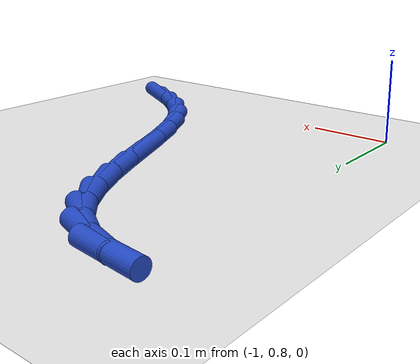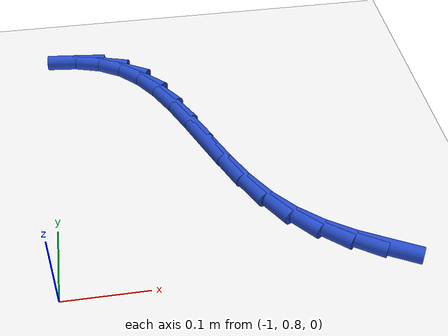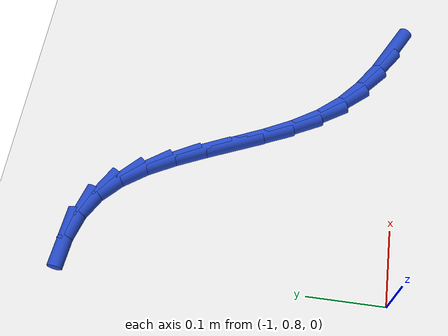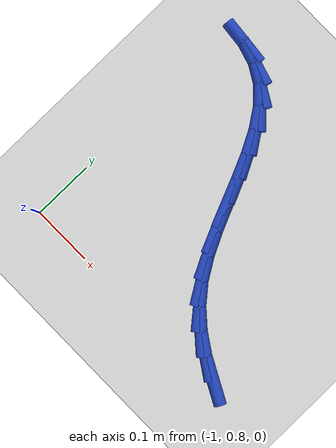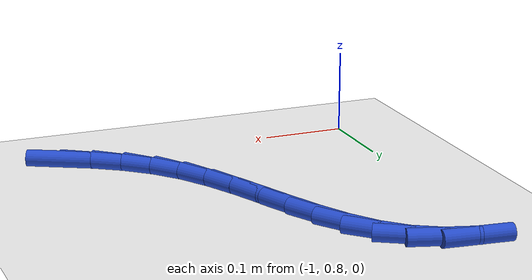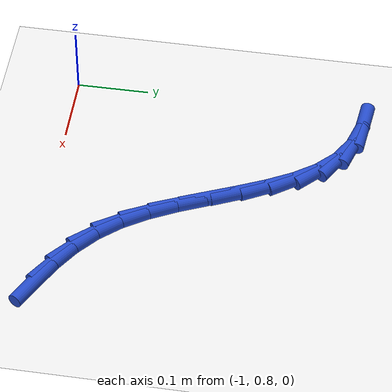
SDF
<sdf version="1.6">
 <world name="default">
  <model name="ground_plane">
   <static>1</static>
   <link name="link">
    <collision name="collision">
     <geometry><plane><normal>0 0 1</normal><size>100 100</size></plane></geometry>
     <surface><friction><ode><mu>100</mu><mu2>50</mu2></ode></friction></surface>
    </collision>
    <visual name="visual">
     <cast_shadows>0</cast_shadows>
     <geometry><plane><normal>0 0 1</normal><size>100 100</size></plane></geometry>
     <material>
      <script><uri>file://media/materials/scripts/gazebo.material</uri><name>Gazebo/WhiteGlow</name></script>
     </material>
    </visual>
   </link>
  </model>
  <model name="line">
   <link name="link_28">
    <pose>-0.6293990476465084 0.8127813725033798 0.01 0 1.57 -0.4833104177553932</pose>
    <collision name="collision">
     <geometry><cylinder><radius>0.01</radius><length>0.08</length></cylinder></geometry>
    </collision>
    <visual name="visual">
     <material>
      <script><name>Gazebo/Blue</name><uri>file://media/materials/scripts/gazebo.material</uri></script>
     </material>
     <geometry><cylinder><radius>0.01</radius><length>0.08</length></cylinder></geometry>
    </visual>
   </link>
   <link name="link_29">
    <pose>-0.6637714818179637 0.8308209121730035 0.01 0 1.57 -0.5863593184405562</pose>
    <collision name="collision">
     <geometry><cylinder><radius>0.01</radius><length>0.08</length></cylinder></geometry>
    </collision>
    <visual name="visual">
     <material>
      <script><name>Gazebo/Blue</name><uri>file://media/materials/scripts/gazebo.material</uri></script>
     </material>
     <geometry><cylinder><radius>0.01</radius><length>0.08</length></cylinder></geometry>
    </visual>
   </link>
   <link name="link_30">
    <pose>-0.6956080362669816 0.8519697961046208 0.01 0 1.57 -0.7147899993734204</pose>
    <collision name="collision">
     <geometry><cylinder><radius>0.01</radius><length>0.08</length></cylinder></geometry>
    </collision>
    <visual name="visual">
     <material>
      <script><name>Gazebo/Blue</name><uri>file://media/materials/scripts/gazebo.material</uri></script>
     </material>
     <geometry><cylinder><radius>0.01</radius><length>0.08</length></cylinder></geometry>
    </visual>
   </link>
   <link name="link_31">
    <pose>-0.7243771502421518 0.8769382789006412 0.01 0 1.57 -0.8642650642933042</pose>
    <collision name="collision">
     <geometry><cylinder><radius>0.01</radius><length>0.08</length></cylinder></geometry>
    </collision>
    <visual name="visual">
     <material>
      <script><name>Gazebo/Blue</name><uri>file://media/materials/scripts/gazebo.material</uri></script>
     </material>
     <geometry><cylinder><radius>0.01</radius><length>0.08</length></cylinder></geometry>
    </visual>
   </link>
   <link name="link_32">
    <pose>-0.74955052460423 0.9064320423052483 0.01 0 1.57 -1.0069290822484311</pose>
    <collision name="collision">
     <geometry><cylinder><radius>0.01</radius><length>0.08</length></cylinder></geometry>
    </collision>
    <visual name="visual">
     <material>
      <script><name>Gazebo/Blue</name><uri>file://media/materials/scripts/gazebo.material</uri></script>
     </material>
     <geometry><cylinder><radius>0.01</radius><length>0.08</length></cylinder></geometry>
    </visual>
   </link>
   <link name="link_33">
    <pose>-0.7710816044281747 0.9404813511578508 0.01 0 1.57 -1.1028026650929452</pose>
    <collision name="collision">
     <geometry><cylinder><radius>0.01</radius><length>0.08</length></cylinder></geometry>
    </collision>
    <visual name="visual">
     <material>
      <script><name>Gazebo/Blue</name><uri>file://media/materials/scripts/gazebo.material</uri></script>
     </material>
     <geometry><cylinder><radius>0.01</radius><length>0.08</length></cylinder></geometry>
    </visual>
   </link>
   <link name="link_34">
    <pose>-0.7899103915508144 0.9777332941333323 0.01 0 1.57 -1.1550617997431303</pose>
    <collision name="collision">
     <geometry><cylinder><radius>0.01</radius><length>0.08</length></cylinder></geometry>
    </collision>
    <visual name="visual">
     <material>
      <script><name>Gazebo/Blue</name><uri>file://media/materials/scripts/gazebo.material</uri></script>
     </material>
     <geometry><cylinder><radius>0.01</radius><length>0.08</length></cylinder></geometry>
    </visual>
   </link>
   <link name="link_35">
    <pose>-0.8070976851413235 1.0166655991588731 0.01 0 1.57 -1.169073434816772</pose>
    <collision name="collision">
     <geometry><cylinder><radius>0.01</radius><length>0.08</length></cylinder></geometry>
    </collision>
    <visual name="visual">
     <material>
      <script><name>Gazebo/Blue</name><uri>file://media/materials/scripts/gazebo.material</uri></script>
     </material>
     <geometry><cylinder><radius>0.01</radius><length>0.08</length></cylinder></geometry>
    </visual>
   </link>
   <link name="link_36">
    <pose>-0.8237042843688773 1.0557559941616546 0.01 0 1.57 -1.1455223311910874</pose>
    <collision name="collision">
     <geometry><cylinder><radius>0.01</radius><length>0.08</length></cylinder></geometry>
    </collision>
    <visual name="visual">
     <material>
      <script><name>Gazebo/Blue</name><uri>file://media/materials/scripts/gazebo.material</uri></script>
     </material>
     <geometry><cylinder><radius>0.01</radius><length>0.08</length></cylinder></geometry>
    </visual>
   </link>
   <link name="link_37">
    <pose>-0.8407909884026502 1.0934822070688575 0.01 0 1.57 -1.0798026215874026</pose>
    <collision name="collision">
     <geometry><cylinder><radius>0.01</radius><length>0.08</length></cylinder></geometry>
    </collision>
    <visual name="visual">
     <material>
      <script><name>Gazebo/Blue</name><uri>file://media/materials/scripts/gazebo.material</uri></script>
     </material>
     <geometry><cylinder><radius>0.01</radius><length>0.08</length></cylinder></geometry>
    </visual>
   </link>
   <link name="link_38">
    <pose>-0.8594185964118172 1.1283219658076618 0.01 0 1.57 -0.9616691492078544</pose>
    <collision name="collision">
     <geometry><cylinder><radius>0.01</radius><length>0.08</length></cylinder></geometry>
    </collision>
    <visual name="visual">
     <material>
      <script><name>Gazebo/Blue</name><uri>file://media/materials/scripts/gazebo.material</uri></script>
     </material>
     <geometry><cylinder><radius>0.01</radius><length>0.08</length></cylinder></geometry>
    </visual>
   </link>
   <link name="link_39">
    <pose>-0.8806479075655538 1.15875299830525 0.01 0 1.57 -0.7774662660042144</pose>
    <collision name="collision">
     <geometry><cylinder><radius>0.01</radius><length>0.08</length></cylinder></geometry>
    </collision>
    <visual name="visual">
     <material>
      <script><name>Gazebo/Blue</name><uri>file://media/materials/scripts/gazebo.material</uri></script>
     </material>
     <geometry><cylinder><radius>0.01</radius><length>0.08</length></cylinder></geometry>
    </visual>
   </link>
   <link name="link_40">
    <pose>-0.905539721033034 1.1832530324888015 0.01 0 1.57 -0.5284871922387998</pose>
    <collision name="collision">
     <geometry><cylinder><radius>0.01</radius><length>0.08</length></cylinder></geometry>
    </collision>
    <visual name="visual">
     <material>
      <script><name>Gazebo/Blue</name><uri>file://media/materials/scripts/gazebo.material</uri></script>
     </material>
     <geometry><cylinder><radius>0.01</radius><length>0.08</length></cylinder></geometry>
    </visual>
   </link>
   <link name="link_41">
    <pose>-0.9350244809831206 1.2004687904364246 0.01 0 1.57 -0.28943613146975444</pose>
    <collision name="collision">
     <geometry><cylinder><radius>0.01</radius><length>0.08</length></cylinder></geometry>
    </collision>
    <visual name="visual">
     <material>
      <script><name>Gazebo/Blue</name><uri>file://media/materials/scripts/gazebo.material</uri></script>
     </material>
     <geometry><cylinder><radius>0.01</radius><length>0.08</length></cylinder></geometry>
    </visual>
   </link>
   <link name="link_42">
    <pose>-0.96887395262844 1.2105491227670186 0.01 0 1.57 -0.10344830354783854</pose>
    <collision name="collision">
     <geometry><cylinder><radius>0.01</radius><length>0.08</length></cylinder></geometry>
    </collision>
    <visual name="visual">
     <material>
      <script><name>Gazebo/Blue</name><uri>file://media/materials/scripts/gazebo.material</uri></script>
     </material>
     <geometry><cylinder><radius>0.01</radius><length>0.08</length></cylinder></geometry>
    </visual>
   </link>
  </model>
 </world>
</sdf>
